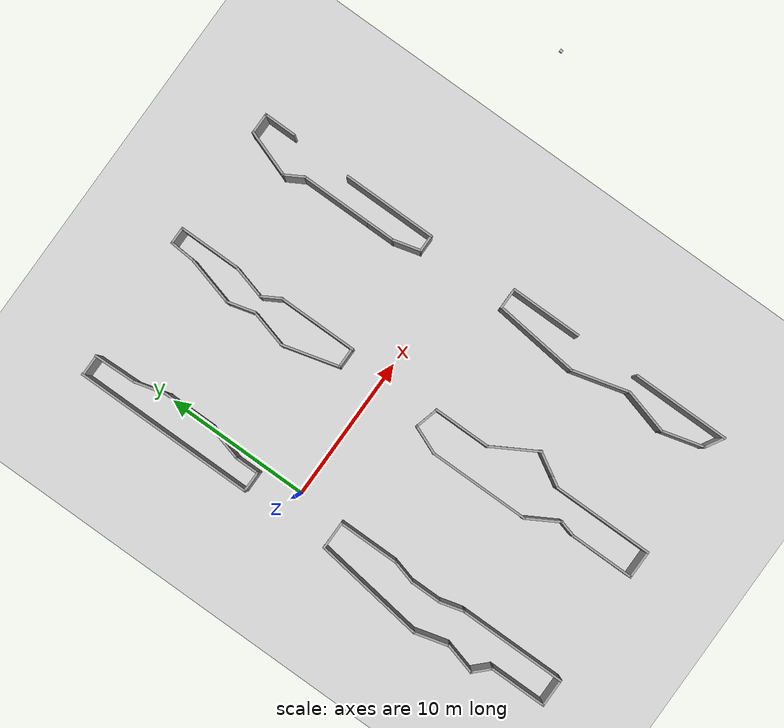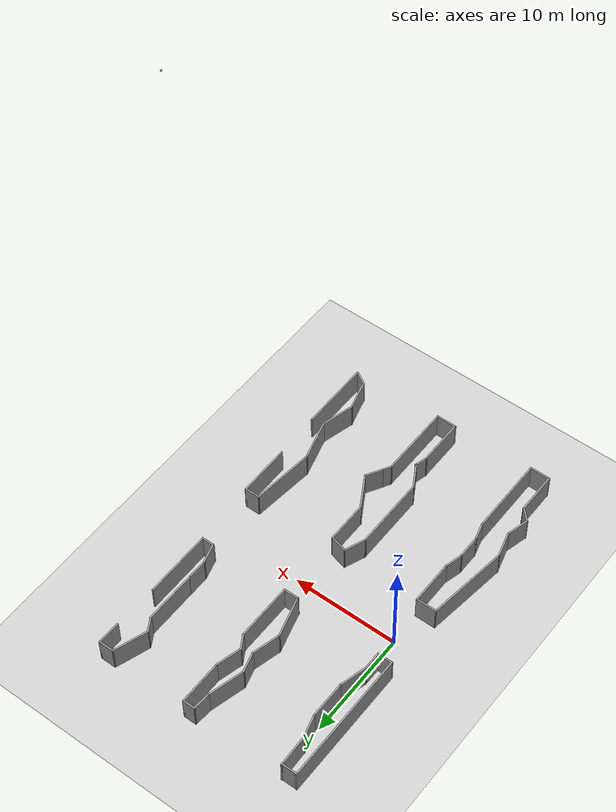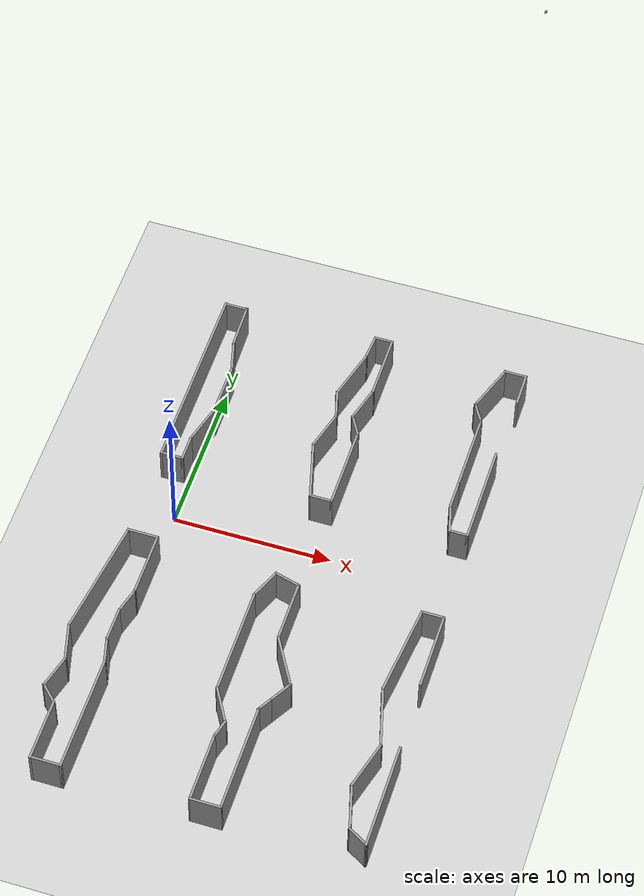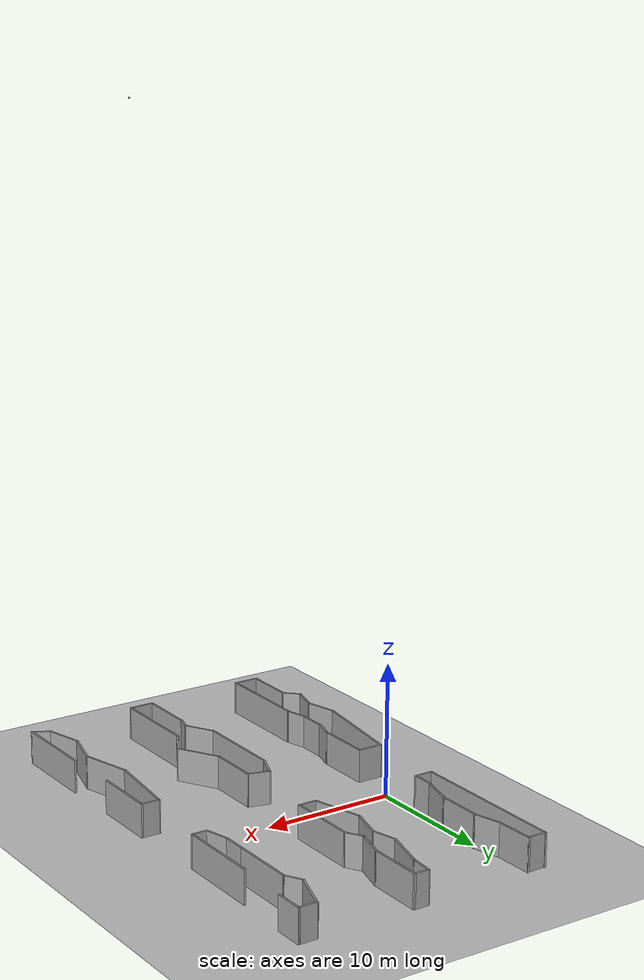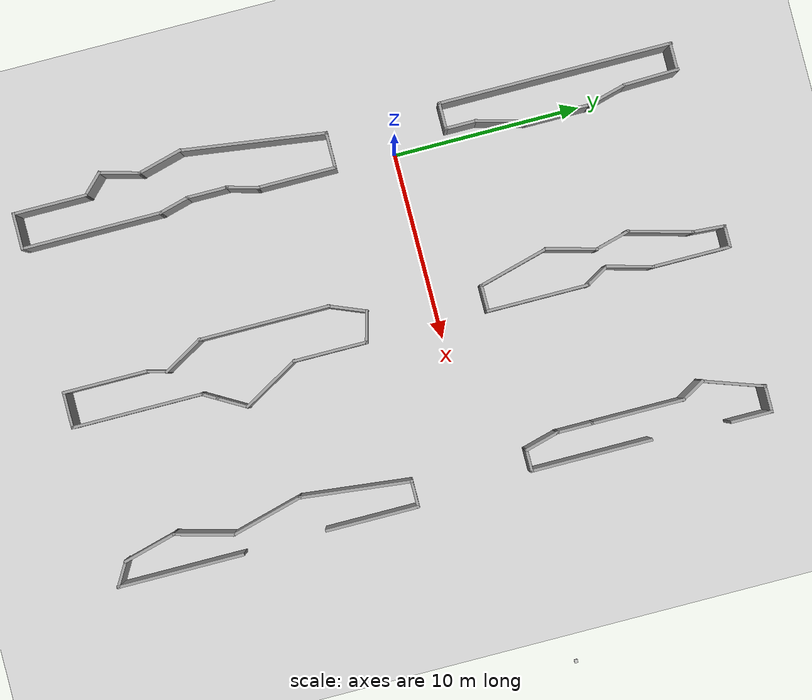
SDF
<sdf version="1.6">
 <world name="default">
  <model name="camera">
   <link name="camera_link">
    <gravity>0</gravity>
    <pose>20 0.05 50 0 1.5 0</pose>
    <visual name="visual"><geometry><box><size>0.1 0.1 0.1</size></box></geometry></visual>
    <sensor name="camera" type="camera">
     <camera>
      <horizontal_fov>1.047</horizontal_fov>
      <image><width>2000</width><height>3000</height></image>
      <clip><near>0.1</near><far>100</far></clip>
      <save enabled="false"><path>/tmp</path></save>
     </camera>
     <plugin name="camera_controller" filename="libgazebo_ros_camera.so">
      <cameraName>gazebo/camera</cameraName>
      <imageTopicName>image_raw</imageTopicName>
     </plugin>
     <always_on>1</always_on>
     <update_rate>30</update_rate>
     <visualize>true</visualize>
    </sensor>
   </link>
  </model>
  <model name="ground_plane">
   <static>1</static>
   <link name="link">
    <collision name="collision">
     <geometry><plane><normal>0 0 1</normal><size>100 100</size></plane></geometry>
     <surface><friction><ode><mu>100</mu><mu2>50</mu2></ode></friction></surface>
    </collision>
    <visual name="visual">
     <cast_shadows>0</cast_shadows>
     <geometry><plane><normal>0 0 1</normal><size>100 100</size></plane></geometry>
     <material>
      <script><uri>file://media/materials/scripts/gazebo.material</uri><name>Gazebo/Grey</name></script>
     </material>
    </visual>
   </link>
  </model>
  <model name="supermarket">
   <pose>25.0605 -2.27607 0 0 -0 0</pose>
   <link name="Wall_10">
    <collision name="Wall_10_Collision">
     <geometry><box><size>5.5 0.15 2.5</size></box></geometry>
     <pose>0 0 1.25 0 -0 0</pose>
    </collision>
    <visual name="Wall_10_Visual">
     <pose>0 0 1.25 0 -0 0</pose>
     <geometry><box><size>5.5 0.15 2.5</size></box></geometry>
     <material>
      <script><uri>file://media/materials/scripts/gazebo.material</uri><name>Gazebo/Grey</name></script>
      <ambient>1 1 1 1</ambient>
     </material>
     <meta><layer>0</layer></meta>
    </visual>
    <pose>-15.8473 7.53046 0 0 -0 1.5708</pose>
   </link>
   <link name="Wall_11">
    <collision name="Wall_11_Collision">
     <geometry><box><size>1.5 0.15 2.5</size></box></geometry>
     <pose>0 0 1.25 0 -0 0</pose>
    </collision>
    <visual name="Wall_11_Visual">
     <pose>0 0 1.25 0 -0 0</pose>
     <geometry><box><size>1.5 0.15 2.5</size></box></geometry>
     <material>
      <script><uri>file://media/materials/scripts/gazebo.material</uri><name>Gazebo/Grey</name></script>
      <ambient>1 1 1 1</ambient>
     </material>
     <meta><layer>0</layer></meta>
    </visual>
    <pose>-16.1848 10.79 0 0 -0 2.0944</pose>
   </link>
   <link name="Wall_12">
    <collision name="Wall_12_Collision">
     <geometry><box><size>2.5 0.15 2.5</size></box></geometry>
     <pose>0 0 1.25 0 -0 0</pose>
    </collision>
    <visual name="Wall_12_Visual">
     <pose>0 0 1.25 0 -0 0</pose>
     <geometry><box><size>2.5 0.15 2.5</size></box></geometry>
     <material>
      <script><uri>file://media/materials/scripts/gazebo.material</uri><name>Gazebo/Grey</name></script>
      <ambient>1 1 1 1</ambient>
     </material>
     <meta><layer>0</layer></meta>
    </visual>
    <pose>-16.2182 12.5096 0 0 -0 1.309</pose>
   </link>
   <link name="Wall_13">
    <collision name="Wall_13_Collision">
     <geometry><box><size>4.25 0.15 2.5</size></box></geometry>
     <pose>0 0 1.25 0 -0 0</pose>
    </collision>
    <visual name="Wall_13_Visual">
     <pose>0 0 1.25 0 -0 0</pose>
     <geometry><box><size>4.25 0.15 2.5</size></box></geometry>
     <material>
      <script><uri>file://media/materials/scripts/gazebo.material</uri><name>Gazebo/Grey</name></script>
      <ambient>1 1 1 1</ambient>
     </material>
     <meta><layer>0</layer></meta>
    </visual>
    <pose>-15.9141 15.6945 0 0 -0 1.5708</pose>
   </link>
   <link name="Wall_14">
    <collision name="Wall_14_Collision">
     <geometry><box><size>1.25 0.15 2.5</size></box></geometry>
     <pose>0 0 1.25 0 -0 0</pose>
    </collision>
    <visual name="Wall_14_Visual">
     <pose>0 0 1.25 0 -0 0</pose>
     <geometry><box><size>1.25 0.15 2.5</size></box></geometry>
     <material>
      <script><uri>file://media/materials/scripts/gazebo.material</uri><name>Gazebo/Grey</name></script>
      <ambient>1 1 1 1</ambient>
     </material>
     <meta><layer>0</layer></meta>
    </visual>
    <pose>-16.4641 17.7445 0 0 -0 3.14159</pose>
   </link>
   <link name="Wall_15">
    <collision name="Wall_15_Collision">
     <geometry><box><size>1.79031 0.15 2.5</size></box></geometry>
     <pose>0 0 1.25 0 -0 0</pose>
    </collision>
    <visual name="Wall_15_Visual">
     <pose>0 0 1.25 0 -0 0</pose>
     <geometry><box><size>1.79031 0.15 2.5</size></box></geometry>
     <material>
      <script><uri>file://media/materials/scripts/gazebo.material</uri><name>Gazebo/Grey</name></script>
      <ambient>1 1 1 1</ambient>
     </material>
     <meta><layer>0</layer></meta>
    </visual>
    <pose>-17.0734 16.9265 0 0 0 -1.64311</pose>
   </link>
   <link name="Wall_17">
    <collision name="Wall_17_Collision">
     <geometry><box><size>1.5 0.15 2.5</size></box></geometry>
     <pose>0 0 1.25 0 -0 0</pose>
    </collision>
    <visual name="Wall_17_Visual">
     <pose>0 0 1.25 0 -0 0</pose>
     <geometry><box><size>1.5 0.15 2.5</size></box></geometry>
     <material>
      <script><uri>file://media/materials/scripts/gazebo.material</uri><name>Gazebo/Grey</name></script>
      <ambient>1 1 1 1</ambient>
     </material>
     <meta><layer>0</layer></meta>
    </visual>
    <pose>-7.84293 17.6629 0 0 -0 0</pose>
   </link>
   <link name="Wall_18">
    <collision name="Wall_18_Collision">
     <geometry><box><size>2.25 0.15 2.5</size></box></geometry>
     <pose>0 0 1.25 0 -0 0</pose>
    </collision>
    <visual name="Wall_18_Visual">
     <pose>0 0 1.25 0 -0 0</pose>
     <geometry><box><size>2.25 0.15 2.5</size></box></geometry>
     <material>
      <script><uri>file://media/materials/scripts/gazebo.material</uri><name>Gazebo/Grey</name></script>
      <ambient>1 1 1 1</ambient>
     </material>
     <meta><layer>0</layer></meta>
    </visual>
    <pose>-7.16793 16.6129 0 0 0 -1.5708</pose>
   </link>
   <link name="Wall_21">
    <collision name="Wall_21_Collision">
     <geometry><box><size>6.5 0.15 2.5</size></box></geometry>
     <pose>0 0 1.25 0 -0 0</pose>
    </collision>
    <visual name="Wall_21_Visual">
     <pose>0 0 1.25 0 -0 0</pose>
     <geometry><box><size>6.5 0.15 2.5</size></box></geometry>
     <material>
      <script><uri>file://media/materials/scripts/gazebo.material</uri><name>Gazebo/Grey</name></script>
      <ambient>1 1 1 1</ambient>
     </material>
     <meta><layer>0</layer></meta>
    </visual>
    <pose>-7.32186 8.13277 0 0 0 -1.5708</pose>
   </link>
   <link name="Wall_22">
    <collision name="Wall_22_Collision">
     <geometry><box><size>1.25 0.15 2.5</size></box></geometry>
     <pose>0 0 1.25 0 -0 0</pose>
    </collision>
    <visual name="Wall_22_Visual">
     <pose>0 0 1.25 0 -0 0</pose>
     <geometry><box><size>1.25 0.15 2.5</size></box></geometry>
     <material>
      <script><uri>file://media/materials/scripts/gazebo.material</uri><name>Gazebo/Grey</name></script>
      <ambient>1 1 1 1</ambient>
     </material>
     <meta><layer>0</layer></meta>
    </visual>
    <pose>-7.87186 4.95777 0 0 -0 3.14159</pose>
   </link>
   <link name="Wall_23">
    <collision name="Wall_23_Collision">
     <geometry><box><size>2 0.15 2.5</size></box></geometry>
     <pose>0 0 1.25 0 -0 0</pose>
    </collision>
    <visual name="Wall_23_Visual">
     <pose>0 0 1.25 0 -0 0</pose>
     <geometry><box><size>2 0.15 2.5</size></box></geometry>
     <material>
      <script><uri>file://media/materials/scripts/gazebo.material</uri><name>Gazebo/Grey</name></script>
      <ambient>1 1 1 1</ambient>
     </material>
     <meta><layer>0</layer></meta>
    </visual>
    <pose>-8.66127 5.85125 0 0 -0 1.8326</pose>
   </link>
   <link name="Wall_24">
    <collision name="Wall_24_Collision">
     <geometry><box><size>2 0.15 2.5</size></box></geometry>
     <pose>0 0 1.25 0 -0 0</pose>
    </collision>
    <visual name="Wall_24_Visual">
     <pose>0 0 1.25 0 -0 0</pose>
     <geometry><box><size>2 0.15 2.5</size></box></geometry>
     <material>
      <script><uri>file://media/materials/scripts/gazebo.material</uri><name>Gazebo/Grey</name></script>
      <ambient>1 1 1 1</ambient>
     </material>
     <meta><layer>0</layer></meta>
    </visual>
    <pose>-8.90067 7.66973 0 0 -0 1.5708</pose>
   </link>
   <link name="Wall_25">
    <collision name="Wall_25_Collision">
     <geometry><box><size>5 0.15 2.5</size></box></geometry>
     <pose>0 0 1.25 0 -0 0</pose>
    </collision>
    <visual name="Wall_25_Visual">
     <pose>0 0 1.25 0 -0 0</pose>
     <geometry><box><size>5 0.15 2.5</size></box></geometry>
     <material>
      <script><uri>file://media/materials/scripts/gazebo.material</uri><name>Gazebo/Grey</name></script>
      <ambient>1 1 1 1</ambient>
     </material>
     <meta><layer>0</layer></meta>
    </visual>
    <pose>-8.90067 11.0197 0 0 -0 1.5708</pose>
   </link>
   <link name="Wall_26">
    <collision name="Wall_26_Collision">
     <geometry><box><size>1.5 0.15 2.5</size></box></geometry>
     <pose>0 0 1.25 0 -0 0</pose>
    </collision>
    <visual name="Wall_26_Visual">
     <pose>0 0 1.25 0 -0 0</pose>
     <geometry><box><size>1.5 0.15 2.5</size></box></geometry>
     <material>
      <script><uri>file://media/materials/scripts/gazebo.material</uri><name>Gazebo/Grey</name></script>
      <ambient>1 1 1 1</ambient>
     </material>
     <meta><layer>0</layer></meta>
    </visual>
    <pose>-9.23817 14.0293 0 0 -0 2.0944</pose>
   </link>
   <link name="Wall_27">
    <collision name="Wall_27_Collision">
     <geometry><box><size>3.37731 0.15 2.5</size></box></geometry>
     <pose>0 0 1.25 0 -0 0</pose>
    </collision>
    <visual name="Wall_27_Visual">
     <pose>0 0 1.25 0 -0 0</pose>
     <geometry><box><size>3.37731 0.15 2.5</size></box></geometry>
     <material>
      <script><uri>file://media/materials/scripts/gazebo.material</uri><name>Gazebo/Grey</name></script>
      <ambient>1 1 1 1</ambient>
     </material>
     <meta><layer>0</layer></meta>
    </visual>
    <pose>-9.0468 16.1384 0 0 -0 1.23688</pose>
   </link>
   <link name="Wall_30">
    <collision name="Wall_30_Collision">
     <geometry><box><size>1.5 0.15 2.5</size></box></geometry>
     <pose>0 0 1.25 0 -0 0</pose>
    </collision>
    <visual name="Wall_30_Visual">
     <pose>0 0 1.25 0 -0 0</pose>
     <geometry><box><size>1.5 0.15 2.5</size></box></geometry>
     <material>
      <script><uri>file://media/materials/scripts/gazebo.material</uri><name>Gazebo/Grey</name></script>
      <ambient>1 1 1 1</ambient>
     </material>
     <meta><layer>0</layer></meta>
    </visual>
    <pose>-26.1222 17.4347 0 0 -0 0</pose>
   </link>
   <link name="Wall_31">
    <collision name="Wall_31_Collision">
     <geometry><box><size>3.00977 0.15 2.5</size></box></geometry>
     <pose>0 0 1.25 0 -0 0</pose>
    </collision>
    <visual name="Wall_31_Visual">
     <pose>0 0 1.25 0 -0 0</pose>
     <geometry><box><size>3.00977 0.15 2.5</size></box></geometry>
     <material>
      <script><uri>file://media/materials/scripts/gazebo.material</uri><name>Gazebo/Grey</name></script>
      <ambient>1 1 1 1</ambient>
     </material>
     <meta><layer>0</layer></meta>
    </visual>
    <pose>-25.407 16.0456 0 0 0 -1.54266</pose>
   </link>
   <link name="Wall_32">
    <collision name="Wall_32_Collision">
     <geometry><box><size>2.25 0.15 2.5</size></box></geometry>
     <pose>0 0 1.25 0 -0 0</pose>
    </collision>
    <visual name="Wall_32_Visual">
     <pose>0 0 1.25 0 -0 0</pose>
     <geometry><box><size>2.25 0.15 2.5</size></box></geometry>
     <material>
      <script><uri>file://media/materials/scripts/gazebo.material</uri><name>Gazebo/Grey</name></script>
      <ambient>1 1 1 1</ambient>
     </material>
     <meta><layer>0</layer></meta>
    </visual>
    <pose>-25.095 13.6021 0 0 0 -1.309</pose>
   </link>
   <link name="Wall_33">
    <collision name="Wall_33_Collision">
     <geometry><box><size>3.5 0.15 2.5</size></box></geometry>
     <pose>0 0 1.25 0 -0 0</pose>
    </collision>
    <visual name="Wall_33_Visual">
     <pose>0 0 1.25 0 -0 0</pose>
     <geometry><box><size>3.5 0.15 2.5</size></box></geometry>
     <material>
      <script><uri>file://media/materials/scripts/gazebo.material</uri><name>Gazebo/Grey</name></script>
      <ambient>1 1 1 1</ambient>
     </material>
     <meta><layer>0</layer></meta>
    </visual>
    <pose>-24.8233 10.9128 0 0 0 -1.5708</pose>
   </link>
   <link name="Wall_34">
    <collision name="Wall_34_Collision">
     <geometry><box><size>2.75 0.15 2.5</size></box></geometry>
     <pose>0 0 1.25 0 -0 0</pose>
    </collision>
    <visual name="Wall_34_Visual">
     <pose>0 0 1.25 0 -0 0</pose>
     <geometry><box><size>2.75 0.15 2.5</size></box></geometry>
     <material>
      <script><uri>file://media/materials/scripts/gazebo.material</uri><name>Gazebo/Grey</name></script>
      <ambient>1 1 1 1</ambient>
     </material>
     <meta><layer>0</layer></meta>
    </visual>
    <pose>-25.1597 7.98213 0 0 0 -1.8326</pose>
   </link>
   <link name="Wall_36">
    <collision name="Wall_36_Collision">
     <geometry><box><size>1.75 0.15 2.5</size></box></geometry>
     <pose>0 0 1.25 0 -0 0</pose>
    </collision>
    <visual name="Wall_36_Visual">
     <pose>0 0 1.25 0 -0 0</pose>
     <geometry><box><size>1.75 0.15 2.5</size></box></geometry>
     <material>
      <script><uri>file://media/materials/scripts/gazebo.material</uri><name>Gazebo/Grey</name></script>
      <ambient>1 1 1 1</ambient>
     </material>
     <meta><layer>0</layer></meta>
    </visual>
    <pose>-25.4962 5.92643 0 0 0 -1.5708</pose>
   </link>
   <link name="Wall_37">
    <collision name="Wall_37_Collision">
     <geometry><box><size>1.5 0.15 2.5</size></box></geometry>
     <pose>0 0 1.25 0 -0 0</pose>
    </collision>
    <visual name="Wall_37_Visual">
     <pose>0 0 1.25 0 -0 0</pose>
     <geometry><box><size>1.5 0.15 2.5</size></box></geometry>
     <material>
      <script><uri>file://media/materials/scripts/gazebo.material</uri><name>Gazebo/Grey</name></script>
      <ambient>1 1 1 1</ambient>
     </material>
     <meta><layer>0</layer></meta>
    </visual>
    <pose>-26.1712 5.12643 0 0 -0 3.14159</pose>
   </link>
   <link name="Wall_38">
    <collision name="Wall_38_Collision">
     <geometry><box><size>12.5 0.15 2.5</size></box></geometry>
     <pose>0 0 1.25 0 -0 0</pose>
    </collision>
    <visual name="Wall_38_Visual">
     <pose>0 0 1.25 0 -0 0</pose>
     <geometry><box><size>12.5 0.15 2.5</size></box></geometry>
     <material>
      <script><uri>file://media/materials/scripts/gazebo.material</uri><name>Gazebo/Grey</name></script>
      <ambient>1 1 1 1</ambient>
     </material>
     <meta><layer>0</layer></meta>
    </visual>
    <pose>-26.8462 11.3014 0 0 -0 1.5708</pose>
   </link>
   <link name="Wall_40">
    <collision name="Wall_40_Collision">
     <geometry><box><size>2 0.15 2.5</size></box></geometry>
     <pose>0 0 1.25 0 -0 0</pose>
    </collision>
    <visual name="Wall_40_Visual">
     <pose>0 0 1.25 0 -0 0</pose>
     <geometry><box><size>2 0.15 2.5</size></box></geometry>
     <material>
      <script><uri>file://media/materials/scripts/gazebo.material</uri><name>Gazebo/Grey</name></script>
      <ambient>1 1 1 1</ambient>
     </material>
     <meta><layer>0</layer></meta>
    </visual>
    <pose>-25.9076 -0.905538 0 0 -0 0</pose>
   </link>
   <link name="Wall_41">
    <collision name="Wall_41_Collision">
     <geometry><box><size>4.25 0.15 2.5</size></box></geometry>
     <pose>0 0 1.25 0 -0 0</pose>
    </collision>
    <visual name="Wall_41_Visual">
     <pose>0 0 1.25 0 -0 0</pose>
     <geometry><box><size>4.25 0.15 2.5</size></box></geometry>
     <material>
      <script><uri>file://media/materials/scripts/gazebo.material</uri><name>Gazebo/Grey</name></script>
      <ambient>1 1 1 1</ambient>
     </material>
     <meta><layer>0</layer></meta>
    </visual>
    <pose>-24.9826 -2.95554 0 0 0 -1.5708</pose>
   </link>
   <link name="Wall_42">
    <collision name="Wall_42_Collision">
     <geometry><box><size>1.75 0.15 2.5</size></box></geometry>
     <pose>0 0 1.25 0 -0 0</pose>
    </collision>
    <visual name="Wall_42_Visual">
     <pose>0 0 1.25 0 -0 0</pose>
     <geometry><box><size>1.75 0.15 2.5</size></box></geometry>
     <material>
      <script><uri>file://media/materials/scripts/gazebo.material</uri><name>Gazebo/Grey</name></script>
      <ambient>1 1 1 1</ambient>
     </material>
     <meta><layer>0</layer></meta>
    </visual>
    <pose>-25.1896 -5.77828 0 0 0 -1.8326</pose>
   </link>
   <link name="Wall_43">
    <collision name="Wall_43_Collision">
     <geometry><box><size>2.25 0.15 2.5</size></box></geometry>
     <pose>0 0 1.25 0 -0 0</pose>
    </collision>
    <visual name="Wall_43_Visual">
     <pose>0 0 1.25 0 -0 0</pose>
     <geometry><box><size>2.25 0.15 2.5</size></box></geometry>
     <material>
      <script><uri>file://media/materials/scripts/gazebo.material</uri><name>Gazebo/Grey</name></script>
      <ambient>1 1 1 1</ambient>
     </material>
     <meta><layer>0</layer></meta>
    </visual>
    <pose>-25.3967 -7.60102 0 0 0 -1.5708</pose>
   </link>
   <link name="Wall_44">
    <collision name="Wall_44_Collision">
     <geometry><box><size>1.75 0.15 2.5</size></box></geometry>
     <pose>0 0 1.25 0 -0 0</pose>
    </collision>
    <visual name="Wall_44_Visual">
     <pose>0 0 1.25 0 -0 0</pose>
     <geometry><box><size>1.75 0.15 2.5</size></box></geometry>
     <material>
      <script><uri>file://media/materials/scripts/gazebo.material</uri><name>Gazebo/Grey</name></script>
      <ambient>1 1 1 1</ambient>
     </material>
     <meta><layer>0</layer></meta>
    </visual>
    <pose>-25.1896 -9.42376 0 0 0 -1.309</pose>
   </link>
   <link name="Wall_45">
    <collision name="Wall_45_Collision">
     <geometry><box><size>7.5 0.15 2.5</size></box></geometry>
     <pose>0 0 1.25 0 -0 0</pose>
    </collision>
    <visual name="Wall_45_Visual">
     <pose>0 0 1.25 0 -0 0</pose>
     <geometry><box><size>7.5 0.15 2.5</size></box></geometry>
     <material>
      <script><uri>file://media/materials/scripts/gazebo.material</uri><name>Gazebo/Grey</name></script>
      <ambient>1 1 1 1</ambient>
     </material>
     <meta><layer>0</layer></meta>
    </visual>
    <pose>-24.9826 -13.8715 0 0 0 -1.5708</pose>
   </link>
   <link name="Wall_46">
    <collision name="Wall_46_Collision">
     <geometry><box><size>2 0.15 2.5</size></box></geometry>
     <pose>0 0 1.25 0 -0 0</pose>
    </collision>
    <visual name="Wall_46_Visual">
     <pose>0 0 1.25 0 -0 0</pose>
     <geometry><box><size>2 0.15 2.5</size></box></geometry>
     <material>
      <script><uri>file://media/materials/scripts/gazebo.material</uri><name>Gazebo/Grey</name></script>
      <ambient>1 1 1 1</ambient>
     </material>
     <meta><layer>0</layer></meta>
    </visual>
    <pose>-25.9076 -17.5465 0 0 -0 3.14159</pose>
   </link>
   <link name="Wall_47">
    <collision name="Wall_47_Collision">
     <geometry><box><size>4 0.15 2.5</size></box></geometry>
     <pose>0 0 1.25 0 -0 0</pose>
    </collision>
    <visual name="Wall_47_Visual">
     <pose>0 0 1.25 0 -0 0</pose>
     <geometry><box><size>4 0.15 2.5</size></box></geometry>
     <material>
      <script><uri>file://media/materials/scripts/gazebo.material</uri><name>Gazebo/Grey</name></script>
      <ambient>1 1 1 1</ambient>
     </material>
     <meta><layer>0</layer></meta>
    </visual>
    <pose>-26.8326 -15.6215 0 0 -0 1.5708</pose>
   </link>
   <link name="Wall_48">
    <collision name="Wall_48_Collision">
     <geometry><box><size>1.5 0.15 2.5</size></box></geometry>
     <pose>0 0 1.25 0 -0 0</pose>
    </collision>
    <visual name="Wall_48_Visual">
     <pose>0 0 1.25 0 -0 0</pose>
     <geometry><box><size>1.5 0.15 2.5</size></box></geometry>
     <material>
      <script><uri>file://media/materials/scripts/gazebo.material</uri><name>Gazebo/Grey</name></script>
      <ambient>1 1 1 1</ambient>
     </material>
     <meta><layer>0</layer></meta>
    </visual>
    <pose>-27.3099 -13.2192 0 0 -0 2.35619</pose>
   </link>
   <link name="Wall_49">
    <collision name="Wall_49_Collision">
     <geometry><box><size>2.25 0.15 2.5</size></box></geometry>
     <pose>0 0 1.25 0 -0 0</pose>
    </collision>
    <visual name="Wall_49_Visual">
     <pose>0 0 1.25 0 -0 0</pose>
     <geometry><box><size>2.25 0.15 2.5</size></box></geometry>
     <material>
      <script><uri>file://media/materials/scripts/gazebo.material</uri><name>Gazebo/Grey</name></script>
      <ambient>1 1 1 1</ambient>
     </material>
     <meta><layer>0</layer></meta>
    </visual>
    <pose>-27.5154 -11.7277 0 0 -0 1.309</pose>
   </link>
   <link name="Wall_5">
    <collision name="Wall_5_Collision">
     <geometry><box><size>3.5 0.15 2.5</size></box></geometry>
     <pose>0 0 1.25 0 -0 0</pose>
    </collision>
    <visual name="Wall_5_Visual">
     <pose>0 0 1.25 0 -0 0</pose>
     <geometry><box><size>3.5 0.15 2.5</size></box></geometry>
     <material>
      <script><uri>file://media/materials/scripts/gazebo.material</uri><name>Gazebo/Grey</name></script>
      <ambient>1 1 1 1</ambient>
     </material>
     <meta><layer>0</layer></meta>
    </visual>
    <pose>-17.5662 14.4906 0 0 0 -1.8326</pose>
   </link>
   <link name="Wall_50">
    <collision name="Wall_50_Collision">
     <geometry><box><size>2.5 0.15 2.5</size></box></geometry>
     <pose>0 0 1.25 0 -0 0</pose>
    </collision>
    <visual name="Wall_50_Visual">
     <pose>0 0 1.25 0 -0 0</pose>
     <geometry><box><size>2.5 0.15 2.5</size></box></geometry>
     <material>
      <script><uri>file://media/materials/scripts/gazebo.material</uri><name>Gazebo/Grey</name></script>
      <ambient>1 1 1 1</ambient>
     </material>
     <meta><layer>0</layer></meta>
    </visual>
    <pose>-27.5478 -9.5785 0 0 -0 1.8326</pose>
   </link>
   <link name="Wall_51">
    <collision name="Wall_51_Collision">
     <geometry><box><size>7.7566 0.15 2.5</size></box></geometry>
     <pose>0 0 1.25 0 -0 0</pose>
    </collision>
    <visual name="Wall_51_Visual">
     <pose>0 0 1.25 0 -0 0</pose>
     <geometry><box><size>7.7566 0.15 2.5</size></box></geometry>
     <material>
      <script><uri>file://media/materials/scripts/gazebo.material</uri><name>Gazebo/Grey</name></script>
      <ambient>1 1 1 1</ambient>
     </material>
     <meta><layer>0</layer></meta>
    </visual>
    <pose>-27.3422 -4.67454 0 0 -0 1.43639</pose>
   </link>
   <link name="Wall_54">
    <collision name="Wall_54_Collision">
     <geometry><box><size>1.75 0.15 2.5</size></box></geometry>
     <pose>0 0 1.25 0 -0 0</pose>
    </collision>
    <visual name="Wall_54_Visual">
     <pose>0 0 1.25 0 -0 0</pose>
     <geometry><box><size>1.75 0.15 2.5</size></box></geometry>
     <material>
      <script><uri>file://media/materials/scripts/gazebo.material</uri><name>Gazebo/Grey</name></script>
      <ambient>1 1 1 1</ambient>
     </material>
     <meta><layer>0</layer></meta>
    </visual>
    <pose>-16.6363 -1.39581 0 0 0 -0.261799</pose>
   </link>
   <link name="Wall_57">
    <collision name="Wall_57_Collision">
     <geometry><box><size>4 0.15 2.5</size></box></geometry>
     <pose>0 0 1.25 0 -0 0</pose>
    </collision>
    <visual name="Wall_57_Visual">
     <pose>0 0 1.25 0 -0 0</pose>
     <geometry><box><size>4 0.15 2.5</size></box></geometry>
     <material>
      <script><uri>file://media/materials/scripts/gazebo.material</uri><name>Gazebo/Grey</name></script>
      <ambient>1 1 1 1</ambient>
     </material>
     <meta><layer>0</layer></meta>
    </visual>
    <pose>-15.8636 -3.52787 0 0 0 -1.5708</pose>
   </link>
   <link name="Wall_58">
    <collision name="Wall_58_Collision">
     <geometry><box><size>3.5 0.15 2.5</size></box></geometry>
     <pose>0 0 1.25 0 -0 0</pose>
    </collision>
    <visual name="Wall_58_Visual">
     <pose>0 0 1.25 0 -0 0</pose>
     <geometry><box><size>3.5 0.15 2.5</size></box></geometry>
     <material>
      <script><uri>file://media/materials/scripts/gazebo.material</uri><name>Gazebo/Grey</name></script>
      <ambient>1 1 1 1</ambient>
     </material>
     <meta><layer>0</layer></meta>
    </visual>
    <pose>-15.0261 -6.90346 0 0 0 -1.0472</pose>
   </link>
   <link name="Wall_59">
    <collision name="Wall_59_Collision">
     <geometry><box><size>1.75 0.15 2.5</size></box></geometry>
     <pose>0 0 1.25 0 -0 0</pose>
    </collision>
    <visual name="Wall_59_Visual">
     <pose>0 0 1.25 0 -0 0</pose>
     <geometry><box><size>1.75 0.15 2.5</size></box></geometry>
     <material>
      <script><uri>file://media/materials/scripts/gazebo.material</uri><name>Gazebo/Grey</name></script>
      <ambient>1 1 1 1</ambient>
     </material>
     <meta><layer>0</layer></meta>
    </visual>
    <pose>-14.5886 -9.04687 0 0 0 -2.0944</pose>
   </link>
   <link name="Wall_6">
    <collision name="Wall_6_Collision">
     <geometry><box><size>2 0.15 2.5</size></box></geometry>
     <pose>0 0 1.25 0 -0 0</pose>
    </collision>
    <visual name="Wall_6_Visual">
     <pose>0 0 1.25 0 -0 0</pose>
     <geometry><box><size>2 0.15 2.5</size></box></geometry>
     <material>
      <script><uri>file://media/materials/scripts/gazebo.material</uri><name>Gazebo/Grey</name></script>
      <ambient>1 1 1 1</ambient>
     </material>
     <meta><layer>0</layer></meta>
    </visual>
    <pose>-17.7603 11.9792 0 0 0 -1.309</pose>
   </link>
   <link name="Wall_60">
    <collision name="Wall_60_Collision">
     <geometry><box><size>1 0.15 2.5</size></box></geometry>
     <pose>0 0 1.25 0 -0 0</pose>
    </collision>
    <visual name="Wall_60_Visual">
     <pose>0 0 1.25 0 -0 0</pose>
     <geometry><box><size>1 0.15 2.5</size></box></geometry>
     <material>
      <script><uri>file://media/materials/scripts/gazebo.material</uri><name>Gazebo/Grey</name></script>
      <ambient>1 1 1 1</ambient>
     </material>
     <meta><layer>0</layer></meta>
    </visual>
    <pose>-15.2011 -10.1078 0 0 0 -2.0944</pose>
   </link>
   <link name="Wall_61">
    <collision name="Wall_61_Collision">
     <geometry><box><size>7 0.15 2.5</size></box></geometry>
     <pose>0 0 1.25 0 -0 0</pose>
    </collision>
    <visual name="Wall_61_Visual">
     <pose>0 0 1.25 0 -0 0</pose>
     <geometry><box><size>7 0.15 2.5</size></box></geometry>
     <material>
      <script><uri>file://media/materials/scripts/gazebo.material</uri><name>Gazebo/Grey</name></script>
      <ambient>1 1 1 1</ambient>
     </material>
     <meta><layer>0</layer></meta>
    </visual>
    <pose>-15.4136 -13.9008 0 0 0 -1.5708</pose>
   </link>
   <link name="Wall_62">
    <collision name="Wall_62_Collision">
     <geometry><box><size>2 0.15 2.5</size></box></geometry>
     <pose>0 0 1.25 0 -0 0</pose>
    </collision>
    <visual name="Wall_62_Visual">
     <pose>0 0 1.25 0 -0 0</pose>
     <geometry><box><size>2 0.15 2.5</size></box></geometry>
     <material>
      <script><uri>file://media/materials/scripts/gazebo.material</uri><name>Gazebo/Grey</name></script>
      <ambient>1 1 1 1</ambient>
     </material>
     <meta><layer>0</layer></meta>
    </visual>
    <pose>-16.3386 -17.3258 0 0 -0 3.14159</pose>
   </link>
   <link name="Wall_63">
    <collision name="Wall_63_Collision">
     <geometry><box><size>4.5 0.15 2.5</size></box></geometry>
     <pose>0 0 1.25 0 -0 0</pose>
    </collision>
    <visual name="Wall_63_Visual">
     <pose>0 0 1.25 0 -0 0</pose>
     <geometry><box><size>4.5 0.15 2.5</size></box></geometry>
     <material>
      <script><uri>file://media/materials/scripts/gazebo.material</uri><name>Gazebo/Grey</name></script>
      <ambient>1 1 1 1</ambient>
     </material>
     <meta><layer>0</layer></meta>
    </visual>
    <pose>-17.2636 -15.1508 0 0 -0 1.5708</pose>
   </link>
   <link name="Wall_64">
    <collision name="Wall_64_Collision">
     <geometry><box><size>1.25 0.15 2.5</size></box></geometry>
     <pose>0 0 1.25 0 -0 0</pose>
    </collision>
    <visual name="Wall_64_Visual">
     <pose>0 0 1.25 0 -0 0</pose>
     <geometry><box><size>1.25 0.15 2.5</size></box></geometry>
     <material>
      <script><uri>file://media/materials/scripts/gazebo.material</uri><name>Gazebo/Grey</name></script>
      <ambient>1 1 1 1</ambient>
     </material>
     <meta><layer>0</layer></meta>
    </visual>
    <pose>-17.1212 -12.4446 0 0 -0 1.309</pose>
   </link>
   <link name="Wall_65">
    <collision name="Wall_65_Collision">
     <geometry><box><size>2.5 0.15 2.5</size></box></geometry>
     <pose>0 0 1.25 0 -0 0</pose>
    </collision>
    <visual name="Wall_65_Visual">
     <pose>0 0 1.25 0 -0 0</pose>
     <geometry><box><size>2.5 0.15 2.5</size></box></geometry>
     <material>
      <script><uri>file://media/materials/scripts/gazebo.material</uri><name>Gazebo/Grey</name></script>
      <ambient>1 1 1 1</ambient>
     </material>
     <meta><layer>0</layer></meta>
    </visual>
    <pose>-17.5664 -10.8957 0 0 -0 2.0944</pose>
   </link>
   <link name="Wall_66">
    <collision name="Wall_66_Collision">
     <geometry><box><size>7 0.15 2.5</size></box></geometry>
     <pose>0 0 1.25 0 -0 0</pose>
    </collision>
    <visual name="Wall_66_Visual">
     <pose>0 0 1.25 0 -0 0</pose>
     <geometry><box><size>7 0.15 2.5</size></box></geometry>
     <material>
      <script><uri>file://media/materials/scripts/gazebo.material</uri><name>Gazebo/Grey</name></script>
      <ambient>1 1 1 1</ambient>
     </material>
     <meta><layer>0</layer></meta>
    </visual>
    <pose>-18.1539 -6.45314 0 0 -0 1.5708</pose>
   </link>
   <link name="Wall_67">
    <collision name="Wall_67_Collision">
     <geometry><box><size>2.13446 0.15 2.5</size></box></geometry>
     <pose>0 0 1.25 0 -0 0</pose>
    </collision>
    <visual name="Wall_67_Visual">
     <pose>0 0 1.25 0 -0 0</pose>
     <geometry><box><size>2.13446 0.15 2.5</size></box></geometry>
     <material>
      <script><uri>file://media/materials/scripts/gazebo.material</uri><name>Gazebo/Grey</name></script>
      <ambient>1 1 1 1</ambient>
     </material>
     <meta><layer>0</layer></meta>
    </visual>
    <pose>-17.7814 -2.10845 0 0 -0 1.18605</pose>
   </link>
   <link name="Wall_69">
    <collision name="Wall_69_Collision">
     <geometry><box><size>1.5 0.15 2.5</size></box></geometry>
     <pose>0 0 1.25 0 -0 0</pose>
    </collision>
    <visual name="Wall_69_Visual">
     <pose>0 0 1.25 0 -0 0</pose>
     <geometry><box><size>1.5 0.15 2.5</size></box></geometry>
     <material>
      <script><uri>file://media/materials/scripts/gazebo.material</uri><name>Gazebo/Grey</name></script>
      <ambient>1 1 1 1</ambient>
     </material>
     <meta><layer>0</layer></meta>
    </visual>
    <pose>-7.68685 -1.15557 0 0 -0 0</pose>
   </link>
   <link name="Wall_7">
    <collision name="Wall_7_Collision">
     <geometry><box><size>2.75 0.15 2.5</size></box></geometry>
     <pose>0 0 1.25 0 -0 0</pose>
    </collision>
    <visual name="Wall_7_Visual">
     <pose>0 0 1.25 0 -0 0</pose>
     <geometry><box><size>2.75 0.15 2.5</size></box></geometry>
     <material>
      <script><uri>file://media/materials/scripts/gazebo.material</uri><name>Gazebo/Grey</name></script>
      <ambient>1 1 1 1</ambient>
     </material>
     <meta><layer>0</layer></meta>
    </visual>
    <pose>-17.8573 9.82998 0 0 0 -1.8326</pose>
   </link>
   <link name="Wall_70">
    <collision name="Wall_70_Collision">
     <geometry><box><size>5 0.15 2.5</size></box></geometry>
     <pose>0 0 1.25 0 -0 0</pose>
    </collision>
    <visual name="Wall_70_Visual">
     <pose>0 0 1.25 0 -0 0</pose>
     <geometry><box><size>5 0.15 2.5</size></box></geometry>
     <material>
      <script><uri>file://media/materials/scripts/gazebo.material</uri><name>Gazebo/Grey</name></script>
      <ambient>1 1 1 1</ambient>
     </material>
     <meta><layer>0</layer></meta>
    </visual>
    <pose>-7.01185 -3.58057 0 0 0 -1.5708</pose>
   </link>
   <link name="Wall_75">
    <collision name="Wall_75_Collision">
     <geometry><box><size>6.75 0.15 2.5</size></box></geometry>
     <pose>0 0 1.25 0 -0 0</pose>
    </collision>
    <visual name="Wall_75_Visual">
     <pose>0 0 1.25 0 -0 0</pose>
     <geometry><box><size>6.75 0.15 2.5</size></box></geometry>
     <material>
      <script><uri>file://media/materials/scripts/gazebo.material</uri><name>Gazebo/Grey</name></script>
      <ambient>1 1 1 1</ambient>
     </material>
     <meta><layer>0</layer></meta>
    </visual>
    <pose>-6.89978 -13.7759 0 0 0 -1.5708</pose>
   </link>
   <link name="Wall_76">
    <collision name="Wall_76_Collision">
     <geometry><box><size>1.5 0.15 2.5</size></box></geometry>
     <pose>0 0 1.25 0 -0 0</pose>
    </collision>
    <visual name="Wall_76_Visual">
     <pose>0 0 1.25 0 -0 0</pose>
     <geometry><box><size>1.5 0.15 2.5</size></box></geometry>
     <material>
      <script><uri>file://media/materials/scripts/gazebo.material</uri><name>Gazebo/Grey</name></script>
      <ambient>1 1 1 1</ambient>
     </material>
     <meta><layer>0</layer></meta>
    </visual>
    <pose>-7.48435 -16.7384 0 0 -0 2.61799</pose>
   </link>
   <link name="Wall_77">
    <collision name="Wall_77_Collision">
     <geometry><box><size>3 0.15 2.5</size></box></geometry>
     <pose>0 0 1.25 0 -0 0</pose>
    </collision>
    <visual name="Wall_77_Visual">
     <pose>0 0 1.25 0 -0 0</pose>
     <geometry><box><size>3 0.15 2.5</size></box></geometry>
     <material>
      <script><uri>file://media/materials/scripts/gazebo.material</uri><name>Gazebo/Grey</name></script>
      <ambient>1 1 1 1</ambient>
     </material>
     <meta><layer>0</layer></meta>
    </visual>
    <pose>-8.43773 -15.0245 0 0 -0 1.8326</pose>
   </link>
   <link name="Wall_78">
    <collision name="Wall_78_Collision">
     <geometry><box><size>3.25 0.15 2.5</size></box></geometry>
     <pose>0 0 1.25 0 -0 0</pose>
    </collision>
    <visual name="Wall_78_Visual">
     <pose>0 0 1.25 0 -0 0</pose>
     <geometry><box><size>3.25 0.15 2.5</size></box></geometry>
     <material>
      <script><uri>file://media/materials/scripts/gazebo.material</uri><name>Gazebo/Grey</name></script>
      <ambient>1 1 1 1</ambient>
     </material>
     <meta><layer>0</layer></meta>
    </visual>
    <pose>-8.40538 -12.1508 0 0 -0 1.309</pose>
   </link>
   <link name="Wall_79">
    <collision name="Wall_79_Collision">
     <geometry><box><size>4 0.15 2.5</size></box></geometry>
     <pose>0 0 1.25 0 -0 0</pose>
    </collision>
    <visual name="Wall_79_Visual">
     <pose>0 0 1.25 0 -0 0</pose>
     <geometry><box><size>4 0.15 2.5</size></box></geometry>
     <material>
      <script><uri>file://media/materials/scripts/gazebo.material</uri><name>Gazebo/Grey</name></script>
      <ambient>1 1 1 1</ambient>
     </material>
     <meta><layer>0</layer></meta>
    </visual>
    <pose>-8.50244 -8.79425 0 0 -0 1.8326</pose>
   </link>
   <link name="Wall_8">
    <collision name="Wall_8_Collision">
     <geometry><box><size>4 0.15 2.5</size></box></geometry>
     <pose>0 0 1.25 0 -0 0</pose>
    </collision>
    <visual name="Wall_8_Visual">
     <pose>0 0 1.25 0 -0 0</pose>
     <geometry><box><size>4 0.15 2.5</size></box></geometry>
     <material>
      <script><uri>file://media/materials/scripts/gazebo.material</uri><name>Gazebo/Grey</name></script>
      <ambient>1 1 1 1</ambient>
     </material>
     <meta><layer>0</layer></meta>
    </visual>
    <pose>-17.6956 6.71487 0 0 0 -1.309</pose>
   </link>
   <link name="Wall_80">
    <collision name="Wall_80_Collision">
     <geometry><box><size>5.96446 0.15 2.5</size></box></geometry>
     <pose>0 0 1.25 0 -0 0</pose>
    </collision>
    <visual name="Wall_80_Visual">
     <pose>0 0 1.25 0 -0 0</pose>
     <geometry><box><size>5.96446 0.15 2.5</size></box></geometry>
     <material>
      <script><uri>file://media/materials/scripts/gazebo.material</uri><name>Gazebo/Grey</name></script>
      <ambient>1 1 1 1</ambient>
     </material>
     <meta><layer>0</layer></meta>
    </visual>
    <pose>-8.68126 -4.04521 0 0 -0 1.46071</pose>
   </link>
   <link name="Wall_9">
    <collision name="Wall_9_Collision">
     <geometry><box><size>1.5 0.15 2.5</size></box></geometry>
     <pose>0 0 1.25 0 -0 0</pose>
    </collision>
    <visual name="Wall_9_Visual">
     <pose>0 0 1.25 0 -0 0</pose>
     <geometry><box><size>1.5 0.15 2.5</size></box></geometry>
     <material>
      <script><uri>file://media/materials/scripts/gazebo.material</uri><name>Gazebo/Grey</name></script>
      <ambient>1 1 1 1</ambient>
     </material>
     <meta><layer>0</layer></meta>
    </visual>
    <pose>-16.5223 4.85546 0 0 -0 0</pose>
   </link>
   <static>1</static>
  </model>
 </world>
</sdf>
